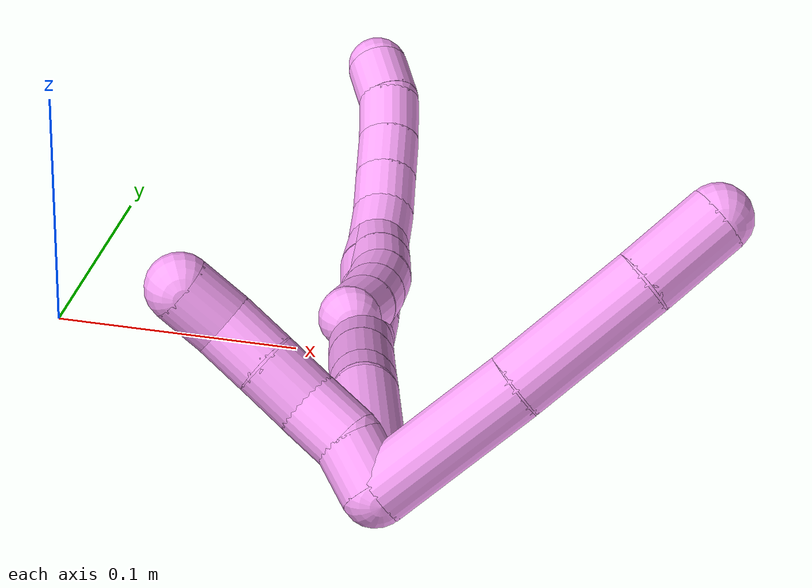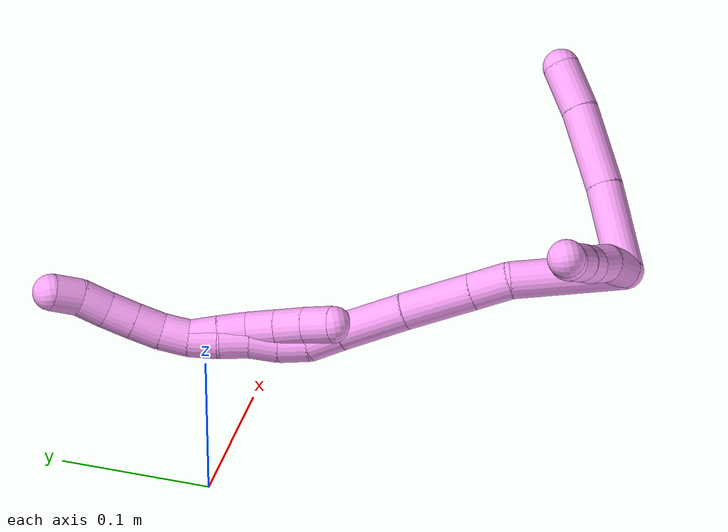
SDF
<sdf version="1.7">
 <world name="default">
  <model name="4">
   <static>0</static>
   <link name="4">
    <collision name="collision-cylinder-e_1_2_8">
     <pose>0.021326 0.02083 -0.000878 -1.61292 0.796719 -0.827293</pose>
     <geometry><cylinder><radius>0.0125</radius><length>0.059648</length></cylinder></geometry>
     <surface>
      <friction><ode><mu>1.16</mu><mu2>1.16</mu2><slip1>0</slip1><slip2>0</slip2></ode></friction>
      <contact><ode><kp>1e+06</kp><kd>1</kd><max_vel>0</max_vel><min_depth>0.001</min_depth></ode></contact>
     </surface>
    </collision>
    <visual name="visual-cylinder-e_1_2_8">
     <pose>0.021326 0.02083 -0.000878 -1.61292 0.796719 -0.827293</pose>
     <geometry><cylinder><radius>0.0125</radius><length>0.059648</length></cylinder></geometry>
     <material><ambient>1 0.65098 0.996078 1</ambient></material>
    </visual>
    <collision name="collision-cylinder-e_2_8_9">
     <pose>0.062749 0.061359 -0.004457 -1.70706 0.790748 -0.89257</pose>
     <geometry><cylinder><radius>0.0125</radius><length>0.05654</length></cylinder></geometry>
     <surface>
      <friction><ode><mu>1.16</mu><mu2>1.16</mu2><slip1>0</slip1><slip2>0</slip2></ode></friction>
      <contact><ode><kp>1e+06</kp><kd>1</kd><max_vel>0</max_vel><min_depth>0.001</min_depth></ode></contact>
     </surface>
    </collision>
    <visual name="visual-cylinder-e_2_8_9">
     <pose>0.062749 0.061359 -0.004457 -1.70706 0.790748 -0.89257</pose>
     <geometry><cylinder><radius>0.0125</radius><length>0.05654</length></cylinder></geometry>
     <material><ambient>1 0.65098 0.996078 1</ambient></material>
    </visual>
    <collision name="collision-cylinder-e_3_9_6">
     <pose>0.094886 0.092508 -0.010275 -1.8366 0.792619 -1.002</pose>
     <geometry><cylinder><radius>0.0125</radius><length>0.033812</length></cylinder></geometry>
     <surface>
      <friction><ode><mu>1.16</mu><mu2>1.16</mu2><slip1>0</slip1><slip2>0</slip2></ode></friction>
      <contact><ode><kp>1e+06</kp><kd>1</kd><max_vel>0</max_vel><min_depth>0.001</min_depth></ode></contact>
     </surface>
    </collision>
    <visual name="visual-cylinder-e_3_9_6">
     <pose>0.094886 0.092508 -0.010275 -1.8366 0.792619 -1.002</pose>
     <geometry><cylinder><radius>0.0125</radius><length>0.033812</length></cylinder></geometry>
     <material><ambient>1 0.65098 0.996078 1</ambient></material>
    </visual>
    <collision name="collision-cylinder-e_1_2_10">
     <pose>-0.004619 0.006398 -0.006142 -2.33578 -0.480185 1.04273</pose>
     <geometry><cylinder><radius>0.0125</radius><length>0.02</length></cylinder></geometry>
     <surface>
      <friction><ode><mu>1.16</mu><mu2>1.16</mu2><slip1>0</slip1><slip2>0</slip2></ode></friction>
      <contact><ode><kp>1e+06</kp><kd>1</kd><max_vel>0</max_vel><min_depth>0.001</min_depth></ode></contact>
     </surface>
    </collision>
    <visual name="visual-cylinder-e_1_2_10">
     <pose>-0.004619 0.006398 -0.006142 -2.33578 -0.480185 1.04273</pose>
     <geometry><cylinder><radius>0.0125</radius><length>0.02</length></cylinder></geometry>
     <material><ambient>1 0.65098 0.996078 1</ambient></material>
    </visual>
    <collision name="collision-cylinder-e_2_10_11">
     <pose>-0.016079 0.016745 -0.018418 -2.56961 -0.753262 1.86298</pose>
     <geometry><cylinder><radius>0.0125</radius><length>0.02</length></cylinder></geometry>
     <surface>
      <friction><ode><mu>1.16</mu><mu2>1.16</mu2><slip1>0</slip1><slip2>0</slip2></ode></friction>
      <contact><ode><kp>1e+06</kp><kd>1</kd><max_vel>0</max_vel><min_depth>0.001</min_depth></ode></contact>
     </surface>
    </collision>
    <visual name="visual-cylinder-e_2_10_11">
     <pose>-0.016079 0.016745 -0.018418 -2.56961 -0.753262 1.86298</pose>
     <geometry><cylinder><radius>0.0125</radius><length>0.02</length></cylinder></geometry>
     <material><ambient>1 0.65098 0.996078 1</ambient></material>
    </visual>
    <collision name="collision-cylinder-e_3_11_12">
     <pose>-0.030464 0.02601 -0.028398 -2.19718 -0.854901 1.45666</pose>
     <geometry><cylinder><radius>0.0125</radius><length>0.02</length></cylinder></geometry>
     <surface>
      <friction><ode><mu>1.16</mu><mu2>1.16</mu2><slip1>0</slip1><slip2>0</slip2></ode></friction>
      <contact><ode><kp>1e+06</kp><kd>1</kd><max_vel>0</max_vel><min_depth>0.001</min_depth></ode></contact>
     </surface>
    </collision>
    <visual name="visual-cylinder-e_3_11_12">
     <pose>-0.030464 0.02601 -0.028398 -2.19718 -0.854901 1.45666</pose>
     <geometry><cylinder><radius>0.0125</radius><length>0.02</length></cylinder></geometry>
     <material><ambient>1 0.65098 0.996078 1</ambient></material>
    </visual>
    <collision name="collision-cylinder-e_4_12_13">
     <pose>-0.045416 0.03622 -0.036851 -2.32596 -0.834072 1.5959</pose>
     <geometry><cylinder><radius>0.0125</radius><length>0.02</length></cylinder></geometry>
     <surface>
      <friction><ode><mu>1.16</mu><mu2>1.16</mu2><slip1>0</slip1><slip2>0</slip2></ode></friction>
      <contact><ode><kp>1e+06</kp><kd>1</kd><max_vel>0</max_vel><min_depth>0.001</min_depth></ode></contact>
     </surface>
    </collision>
    <visual name="visual-cylinder-e_4_12_13">
     <pose>-0.045416 0.03622 -0.036851 -2.32596 -0.834072 1.5959</pose>
     <geometry><cylinder><radius>0.0125</radius><length>0.02</length></cylinder></geometry>
     <material><ambient>1 0.65098 0.996078 1</ambient></material>
    </visual>
    <collision name="collision-cylinder-e_5_13_5">
     <pose>-0.061015 0.046686 -0.042809 -1.80888 -0.959959 1.16958</pose>
     <geometry><cylinder><radius>0.0125</radius><length>0.02</length></cylinder></geometry>
     <surface>
      <friction><ode><mu>1.16</mu><mu2>1.16</mu2><slip1>0</slip1><slip2>0</slip2></ode></friction>
      <contact><ode><kp>1e+06</kp><kd>1</kd><max_vel>0</max_vel><min_depth>0.001</min_depth></ode></contact>
     </surface>
    </collision>
    <visual name="visual-cylinder-e_5_13_5">
     <pose>-0.061015 0.046686 -0.042809 -1.80888 -0.959959 1.16958</pose>
     <geometry><cylinder><radius>0.0125</radius><length>0.02</length></cylinder></geometry>
     <material><ambient>1 0.65098 0.996078 1</ambient></material>
    </visual>
    <collision name="collision-cylinder-e_1_2_14">
     <pose>0.003912 0.001909 -0.037693 -3.09098 0.103288 -2.2309</pose>
     <geometry><cylinder><radius>0.0125</radius><length>0.075887</length></cylinder></geometry>
     <surface>
      <friction><ode><mu>1.16</mu><mu2>1.16</mu2><slip1>0</slip1><slip2>0</slip2></ode></friction>
      <contact><ode><kp>1e+06</kp><kd>1</kd><max_vel>0</max_vel><min_depth>0.001</min_depth></ode></contact>
     </surface>
    </collision>
    <visual name="visual-cylinder-e_1_2_14">
     <pose>0.003912 0.001909 -0.037693 -3.09098 0.103288 -2.2309</pose>
     <geometry><cylinder><radius>0.0125</radius><length>0.075887</length></cylinder></geometry>
     <material><ambient>1 0.65098 0.996078 1</ambient></material>
    </visual>
    <collision name="collision-cylinder-e_2_14_15">
     <pose>0.010019 0.001027 -0.088143 2.92613 0.166499 1.31429</pose>
     <geometry><cylinder><radius>0.0125</radius><length>0.026484</length></cylinder></geometry>
     <surface>
      <friction><ode><mu>1.16</mu><mu2>1.16</mu2><slip1>0</slip1><slip2>0</slip2></ode></friction>
      <contact><ode><kp>1e+06</kp><kd>1</kd><max_vel>0</max_vel><min_depth>0.001</min_depth></ode></contact>
     </surface>
    </collision>
    <visual name="visual-cylinder-e_2_14_15">
     <pose>0.010019 0.001027 -0.088143 2.92613 0.166499 1.31429</pose>
     <geometry><cylinder><radius>0.0125</radius><length>0.026484</length></cylinder></geometry>
     <material><ambient>1 0.65098 0.996078 1</ambient></material>
    </visual>
    <collision name="collision-cylinder-e_3_15_16">
     <pose>0.016262 -0.00672 -0.123797 2.92848 0.171133 1.35185</pose>
     <geometry><cylinder><radius>0.0125</radius><length>0.047548</length></cylinder></geometry>
     <surface>
      <friction><ode><mu>1.16</mu><mu2>1.16</mu2><slip1>0</slip1><slip2>0</slip2></ode></friction>
      <contact><ode><kp>1e+06</kp><kd>1</kd><max_vel>0</max_vel><min_depth>0.001</min_depth></ode></contact>
     </surface>
    </collision>
    <visual name="visual-cylinder-e_3_15_16">
     <pose>0.016262 -0.00672 -0.123797 2.92848 0.171133 1.35185</pose>
     <geometry><cylinder><radius>0.0125</radius><length>0.047548</length></cylinder></geometry>
     <material><ambient>1 0.65098 0.996078 1</ambient></material>
    </visual>
    <collision name="collision-cylinder-e_4_16_17">
     <pose>0.024514 -0.017264 -0.16863 2.89214 0.183566 1.2665</pose>
     <geometry><cylinder><radius>0.0125</radius><length>0.046049</length></cylinder></geometry>
     <surface>
      <friction><ode><mu>1.16</mu><mu2>1.16</mu2><slip1>0</slip1><slip2>0</slip2></ode></friction>
      <contact><ode><kp>1e+06</kp><kd>1</kd><max_vel>0</max_vel><min_depth>0.001</min_depth></ode></contact>
     </surface>
    </collision>
    <visual name="visual-cylinder-e_4_16_17">
     <pose>0.024514 -0.017264 -0.16863 2.89214 0.183566 1.2665</pose>
     <geometry><cylinder><radius>0.0125</radius><length>0.046049</length></cylinder></geometry>
     <material><ambient>1 0.65098 0.996078 1</ambient></material>
    </visual>
    <collision name="collision-cylinder-e_5_17_18">
     <pose>0.031296 -0.026205 -0.201356 2.84032 0.224488 1.27752</pose>
     <geometry><cylinder><radius>0.0125</radius><length>0.023175</length></cylinder></geometry>
     <surface>
      <friction><ode><mu>1.16</mu><mu2>1.16</mu2><slip1>0</slip1><slip2>0</slip2></ode></friction>
      <contact><ode><kp>1e+06</kp><kd>1</kd><max_vel>0</max_vel><min_depth>0.001</min_depth></ode></contact>
     </surface>
    </collision>
    <visual name="visual-cylinder-e_5_17_18">
     <pose>0.031296 -0.026205 -0.201356 2.84032 0.224488 1.27752</pose>
     <geometry><cylinder><radius>0.0125</radius><length>0.023175</length></cylinder></geometry>
     <material><ambient>1 0.65098 0.996078 1</ambient></material>
    </visual>
    <collision name="collision-cylinder-e_6_18_19">
     <pose>0.036336 -0.029286 -0.222036 -3.11422 0.243722 -2.919</pose>
     <geometry><cylinder><radius>0.0125</radius><length>0.020394</length></cylinder></geometry>
     <surface>
      <friction><ode><mu>1.16</mu><mu2>1.16</mu2><slip1>0</slip1><slip2>0</slip2></ode></friction>
      <contact><ode><kp>1e+06</kp><kd>1</kd><max_vel>0</max_vel><min_depth>0.001</min_depth></ode></contact>
     </surface>
    </collision>
    <visual name="visual-cylinder-e_6_18_19">
     <pose>0.036336 -0.029286 -0.222036 -3.11422 0.243722 -2.919</pose>
     <geometry><cylinder><radius>0.0125</radius><length>0.020394</length></cylinder></geometry>
     <material><ambient>1 0.65098 0.996078 1</ambient></material>
    </visual>
    <collision name="collision-cylinder-e_7_19_20">
     <pose>0.040852 -0.026422 -0.241437 -2.87531 0.205594 -1.31266</pose>
     <geometry><cylinder><radius>0.0125</radius><length>0.020137</length></cylinder></geometry>
     <surface>
      <friction><ode><mu>1.16</mu><mu2>1.16</mu2><slip1>0</slip1><slip2>0</slip2></ode></friction>
      <contact><ode><kp>1e+06</kp><kd>1</kd><max_vel>0</max_vel><min_depth>0.001</min_depth></ode></contact>
     </surface>
    </collision>
    <visual name="visual-cylinder-e_7_19_20">
     <pose>0.040852 -0.026422 -0.241437 -2.87531 0.205594 -1.31266</pose>
     <geometry><cylinder><radius>0.0125</radius><length>0.020137</length></cylinder></geometry>
     <material><ambient>1 0.65098 0.996078 1</ambient></material>
    </visual>
    <collision name="collision-cylinder-e_8_20_21">
     <pose>0.044299 -0.022848 -0.260832 -3.04279 0.1391 -1.90714</pose>
     <geometry><cylinder><radius>0.0125</radius><length>0.020063</length></cylinder></geometry>
     <surface>
      <friction><ode><mu>1.16</mu><mu2>1.16</mu2><slip1>0</slip1><slip2>0</slip2></ode></friction>
      <contact><ode><kp>1e+06</kp><kd>1</kd><max_vel>0</max_vel><min_depth>0.001</min_depth></ode></contact>
     </surface>
    </collision>
    <visual name="visual-cylinder-e_8_20_21">
     <pose>0.044299 -0.022848 -0.260832 -3.04279 0.1391 -1.90714</pose>
     <geometry><cylinder><radius>0.0125</radius><length>0.020063</length></cylinder></geometry>
     <material><ambient>1 0.65098 0.996078 1</ambient></material>
    </visual>
    <collision name="collision-cylinder-e_9_21_1">
     <pose>0.048541 -0.020663 -0.280365 -3.01737 0.285264 -2.32425</pose>
     <geometry><cylinder><radius>0.0125</radius><length>0.020263</length></cylinder></geometry>
     <surface>
      <friction><ode><mu>1.16</mu><mu2>1.16</mu2><slip1>0</slip1><slip2>0</slip2></ode></friction>
      <contact><ode><kp>1e+06</kp><kd>1</kd><max_vel>0</max_vel><min_depth>0.001</min_depth></ode></contact>
     </surface>
    </collision>
    <visual name="visual-cylinder-e_9_21_1">
     <pose>0.048541 -0.020663 -0.280365 -3.01737 0.285264 -2.32425</pose>
     <geometry><cylinder><radius>0.0125</radius><length>0.020263</length></cylinder></geometry>
     <material><ambient>1 0.65098 0.996078 1</ambient></material>
    </visual>
    <collision name="collision-cylinder-e_1_1_22">
     <pose>0.053459 -0.015995 -0.299162 -2.7797 0.208217 -1.03785</pose>
     <geometry><cylinder><radius>0.0125</radius><length>0.02</length></cylinder></geometry>
     <surface>
      <friction><ode><mu>1.16</mu><mu2>1.16</mu2><slip1>0</slip1><slip2>0</slip2></ode></friction>
      <contact><ode><kp>1e+06</kp><kd>1</kd><max_vel>0</max_vel><min_depth>0.001</min_depth></ode></contact>
     </surface>
    </collision>
    <visual name="visual-cylinder-e_1_1_22">
     <pose>0.053459 -0.015995 -0.299162 -2.7797 0.208217 -1.03785</pose>
     <geometry><cylinder><radius>0.0125</radius><length>0.02</length></cylinder></geometry>
     <material><ambient>1 0.65098 0.996078 1</ambient></material>
    </visual>
    <collision name="collision-cylinder-e_2_22_23">
     <pose>0.056766 -0.007417 -0.316816 -2.60016 0.124352 -0.441339</pose>
     <geometry><cylinder><radius>0.0125</radius><length>0.02</length></cylinder></geometry>
     <surface>
      <friction><ode><mu>1.16</mu><mu2>1.16</mu2><slip1>0</slip1><slip2>0</slip2></ode></friction>
      <contact><ode><kp>1e+06</kp><kd>1</kd><max_vel>0</max_vel><min_depth>0.001</min_depth></ode></contact>
     </surface>
    </collision>
    <visual name="visual-cylinder-e_2_22_23">
     <pose>0.056766 -0.007417 -0.316816 -2.60016 0.124352 -0.441339</pose>
     <geometry><cylinder><radius>0.0125</radius><length>0.02</length></cylinder></geometry>
     <material><ambient>1 0.65098 0.996078 1</ambient></material>
    </visual>
    <collision name="collision-cylinder-e_3_23_24">
     <pose>0.059269 0.003067 -0.33366 -2.56949 0.126562 -0.4244</pose>
     <geometry><cylinder><radius>0.0125</radius><length>0.02</length></cylinder></geometry>
     <surface>
      <friction><ode><mu>1.16</mu><mu2>1.16</mu2><slip1>0</slip1><slip2>0</slip2></ode></friction>
      <contact><ode><kp>1e+06</kp><kd>1</kd><max_vel>0</max_vel><min_depth>0.001</min_depth></ode></contact>
     </surface>
    </collision>
    <visual name="visual-cylinder-e_3_23_24">
     <pose>0.059269 0.003067 -0.33366 -2.56949 0.126562 -0.4244</pose>
     <geometry><cylinder><radius>0.0125</radius><length>0.02</length></cylinder></geometry>
     <material><ambient>1 0.65098 0.996078 1</ambient></material>
    </visual>
    <collision name="collision-cylinder-e_4_24_25">
     <pose>0.061053 0.014452 -0.349973 -2.49531 0.052244 -0.15573</pose>
     <geometry><cylinder><radius>0.0125</radius><length>0.02</length></cylinder></geometry>
     <surface>
      <friction><ode><mu>1.16</mu><mu2>1.16</mu2><slip1>0</slip1><slip2>0</slip2></ode></friction>
      <contact><ode><kp>1e+06</kp><kd>1</kd><max_vel>0</max_vel><min_depth>0.001</min_depth></ode></contact>
     </surface>
    </collision>
    <visual name="visual-cylinder-e_4_24_25">
     <pose>0.061053 0.014452 -0.349973 -2.49531 0.052244 -0.15573</pose>
     <geometry><cylinder><radius>0.0125</radius><length>0.02</length></cylinder></geometry>
     <material><ambient>1 0.65098 0.996078 1</ambient></material>
    </visual>
    <collision name="collision-cylinder-e_5_25_4">
     <pose>0.059924 0.024892 -0.366759 -2.67626 -0.16596 0.675116</pose>
     <geometry><cylinder><radius>0.0125</radius><length>0.02</length></cylinder></geometry>
     <surface>
      <friction><ode><mu>1.16</mu><mu2>1.16</mu2><slip1>0</slip1><slip2>0</slip2></ode></friction>
      <contact><ode><kp>1e+06</kp><kd>1</kd><max_vel>0</max_vel><min_depth>0.001</min_depth></ode></contact>
     </surface>
    </collision>
    <visual name="visual-cylinder-e_5_25_4">
     <pose>0.059924 0.024892 -0.366759 -2.67626 -0.16596 0.675116</pose>
     <geometry><cylinder><radius>0.0125</radius><length>0.02</length></cylinder></geometry>
     <material><ambient>1 0.65098 0.996078 1</ambient></material>
    </visual>
    <collision name="collision-cylinder-e_1_1_26">
     <pose>0.050011 -0.019049 -0.280116 -0.041437 -0.138535 0.002875</pose>
     <geometry><cylinder><radius>0.0125</radius><length>0.02</length></cylinder></geometry>
     <surface>
      <friction><ode><mu>1.16</mu><mu2>1.16</mu2><slip1>0</slip1><slip2>0</slip2></ode></friction>
      <contact><ode><kp>1e+06</kp><kd>1</kd><max_vel>0</max_vel><min_depth>0.001</min_depth></ode></contact>
     </surface>
    </collision>
    <visual name="visual-cylinder-e_1_1_26">
     <pose>0.050011 -0.019049 -0.280116 -0.041437 -0.138535 0.002875</pose>
     <geometry><cylinder><radius>0.0125</radius><length>0.02</length></cylinder></geometry>
     <material><ambient>1 0.65098 0.996078 1</ambient></material>
    </visual>
    <collision name="collision-cylinder-e_2_26_27">
     <pose>0.047104 -0.018461 -0.260339 -0.017983 -0.153225 0.00138</pose>
     <geometry><cylinder><radius>0.0125</radius><length>0.02</length></cylinder></geometry>
     <surface>
      <friction><ode><mu>1.16</mu><mu2>1.16</mu2><slip1>0</slip1><slip2>0</slip2></ode></friction>
      <contact><ode><kp>1e+06</kp><kd>1</kd><max_vel>0</max_vel><min_depth>0.001</min_depth></ode></contact>
     </surface>
    </collision>
    <visual name="visual-cylinder-e_2_26_27">
     <pose>0.047104 -0.018461 -0.260339 -0.017983 -0.153225 0.00138</pose>
     <geometry><cylinder><radius>0.0125</radius><length>0.02</length></cylinder></geometry>
     <material><ambient>1 0.65098 0.996078 1</ambient></material>
    </visual>
    <collision name="collision-cylinder-e_3_27_28">
     <pose>0.042612 -0.017785 -0.240921 -0.052138 -0.301036 0.007909</pose>
     <geometry><cylinder><radius>0.0125</radius><length>0.02</length></cylinder></geometry>
     <surface>
      <friction><ode><mu>1.16</mu><mu2>1.16</mu2><slip1>0</slip1><slip2>0</slip2></ode></friction>
      <contact><ode><kp>1e+06</kp><kd>1</kd><max_vel>0</max_vel><min_depth>0.001</min_depth></ode></contact>
     </surface>
    </collision>
    <visual name="visual-cylinder-e_3_27_28">
     <pose>0.042612 -0.017785 -0.240921 -0.052138 -0.301036 0.007909</pose>
     <geometry><cylinder><radius>0.0125</radius><length>0.02</length></cylinder></geometry>
     <material><ambient>1 0.65098 0.996078 1</ambient></material>
    </visual>
    <collision name="collision-cylinder-e_4_28_29">
     <pose>0.036192 -0.016493 -0.222033 -0.084813 -0.352752 0.015125</pose>
     <geometry><cylinder><radius>0.0125</radius><length>0.02</length></cylinder></geometry>
     <surface>
      <friction><ode><mu>1.16</mu><mu2>1.16</mu2><slip1>0</slip1><slip2>0</slip2></ode></friction>
      <contact><ode><kp>1e+06</kp><kd>1</kd><max_vel>0</max_vel><min_depth>0.001</min_depth></ode></contact>
     </surface>
    </collision>
    <visual name="visual-cylinder-e_4_28_29">
     <pose>0.036192 -0.016493 -0.222033 -0.084813 -0.352752 0.015125</pose>
     <geometry><cylinder><radius>0.0125</radius><length>0.02</length></cylinder></geometry>
     <material><ambient>1 0.65098 0.996078 1</ambient></material>
    </visual>
    <collision name="collision-cylinder-e_5_29_3">
     <pose>0.028354 -0.014807 -0.203739 -0.09924 -0.453812 0.022931</pose>
     <geometry><cylinder><radius>0.0125</radius><length>0.02</length></cylinder></geometry>
     <surface>
      <friction><ode><mu>1.16</mu><mu2>1.16</mu2><slip1>0</slip1><slip2>0</slip2></ode></friction>
      <contact><ode><kp>1e+06</kp><kd>1</kd><max_vel>0</max_vel><min_depth>0.001</min_depth></ode></contact>
     </surface>
    </collision>
    <visual name="visual-cylinder-e_5_29_3">
     <pose>0.028354 -0.014807 -0.203739 -0.09924 -0.453812 0.022931</pose>
     <geometry><cylinder><radius>0.0125</radius><length>0.02</length></cylinder></geometry>
     <material><ambient>1 0.65098 0.996078 1</ambient></material>
    </visual>
    <collision name="collision-sphere-3">
     <pose>0.02397 -0.013917 -0.194795 0 -0 0</pose>
     <geometry><sphere><radius>0.0125</radius></sphere></geometry>
     <surface>
      <friction><ode><mu>1.16</mu><mu2>1.16</mu2><slip1>0</slip1><slip2>0</slip2></ode></friction>
      <contact><ode><kp>1e+06</kp><kd>1</kd><max_vel>0</max_vel><min_depth>0.001</min_depth></ode></contact>
     </surface>
    </collision>
    <visual name="visual-sphere-3">
     <pose>0.02397 -0.013917 -0.194795 0 -0 0</pose>
     <geometry><sphere><radius>0.0125</radius></sphere></geometry>
     <material><ambient>1 0.65098 0.996078 1</ambient></material>
    </visual>
    <collision name="collision-sphere-29">
     <pose>0.032738 -0.015698 -0.212682 0 -0 0</pose>
     <geometry><sphere><radius>0.0125</radius></sphere></geometry>
     <surface>
      <friction><ode><mu>1.16</mu><mu2>1.16</mu2><slip1>0</slip1><slip2>0</slip2></ode></friction>
      <contact><ode><kp>1e+06</kp><kd>1</kd><max_vel>0</max_vel><min_depth>0.001</min_depth></ode></contact>
     </surface>
    </collision>
    <visual name="visual-sphere-29">
     <pose>0.032738 -0.015698 -0.212682 0 -0 0</pose>
     <geometry><sphere><radius>0.0125</radius></sphere></geometry>
     <material><ambient>1 0.65098 0.996078 1</ambient></material>
    </visual>
    <collision name="collision-sphere-28">
     <pose>0.039647 -0.017287 -0.231383 0 -0 0</pose>
     <geometry><sphere><radius>0.0125</radius></sphere></geometry>
     <surface>
      <friction><ode><mu>1.16</mu><mu2>1.16</mu2><slip1>0</slip1><slip2>0</slip2></ode></friction>
      <contact><ode><kp>1e+06</kp><kd>1</kd><max_vel>0</max_vel><min_depth>0.001</min_depth></ode></contact>
     </surface>
    </collision>
    <visual name="visual-sphere-28">
     <pose>0.039647 -0.017287 -0.231383 0 -0 0</pose>
     <geometry><sphere><radius>0.0125</radius></sphere></geometry>
     <material><ambient>1 0.65098 0.996078 1</ambient></material>
    </visual>
    <collision name="collision-sphere-27">
     <pose>0.045577 -0.018283 -0.250458 0 -0 0</pose>
     <geometry><sphere><radius>0.0125</radius></sphere></geometry>
     <surface>
      <friction><ode><mu>1.16</mu><mu2>1.16</mu2><slip1>0</slip1><slip2>0</slip2></ode></friction>
      <contact><ode><kp>1e+06</kp><kd>1</kd><max_vel>0</max_vel><min_depth>0.001</min_depth></ode></contact>
     </surface>
    </collision>
    <visual name="visual-sphere-27">
     <pose>0.045577 -0.018283 -0.250458 0 -0 0</pose>
     <geometry><sphere><radius>0.0125</radius></sphere></geometry>
     <material><ambient>1 0.65098 0.996078 1</ambient></material>
    </visual>
    <collision name="collision-sphere-26">
     <pose>0.04863 -0.018638 -0.27022 0 -0 0</pose>
     <geometry><sphere><radius>0.0125</radius></sphere></geometry>
     <surface>
      <friction><ode><mu>1.16</mu><mu2>1.16</mu2><slip1>0</slip1><slip2>0</slip2></ode></friction>
      <contact><ode><kp>1e+06</kp><kd>1</kd><max_vel>0</max_vel><min_depth>0.001</min_depth></ode></contact>
     </surface>
    </collision>
    <visual name="visual-sphere-26">
     <pose>0.04863 -0.018638 -0.27022 0 -0 0</pose>
     <geometry><sphere><radius>0.0125</radius></sphere></geometry>
     <material><ambient>1 0.65098 0.996078 1</ambient></material>
    </visual>
    <collision name="collision-sphere-4">
     <pose>0.058272 0.029317 -0.375573 0 -0 0</pose>
     <geometry><sphere><radius>0.0125</radius></sphere></geometry>
     <surface>
      <friction><ode><mu>1.16</mu><mu2>1.16</mu2><slip1>0</slip1><slip2>0</slip2></ode></friction>
      <contact><ode><kp>1e+06</kp><kd>1</kd><max_vel>0</max_vel><min_depth>0.001</min_depth></ode></contact>
     </surface>
    </collision>
    <visual name="visual-sphere-4">
     <pose>0.058272 0.029317 -0.375573 0 -0 0</pose>
     <geometry><sphere><radius>0.0125</radius></sphere></geometry>
     <material><ambient>1 0.65098 0.996078 1</ambient></material>
    </visual>
    <collision name="collision-sphere-25">
     <pose>0.061576 0.020466 -0.357945 0 -0 0</pose>
     <geometry><sphere><radius>0.0125</radius></sphere></geometry>
     <surface>
      <friction><ode><mu>1.16</mu><mu2>1.16</mu2><slip1>0</slip1><slip2>0</slip2></ode></friction>
      <contact><ode><kp>1e+06</kp><kd>1</kd><max_vel>0</max_vel><min_depth>0.001</min_depth></ode></contact>
     </surface>
    </collision>
    <visual name="visual-sphere-25">
     <pose>0.061576 0.020466 -0.357945 0 -0 0</pose>
     <geometry><sphere><radius>0.0125</radius></sphere></geometry>
     <material><ambient>1 0.65098 0.996078 1</ambient></material>
    </visual>
    <collision name="collision-sphere-24">
     <pose>0.060531 0.008438 -0.342 0 -0 0</pose>
     <geometry><sphere><radius>0.0125</radius></sphere></geometry>
     <surface>
      <friction><ode><mu>1.16</mu><mu2>1.16</mu2><slip1>0</slip1><slip2>0</slip2></ode></friction>
      <contact><ode><kp>1e+06</kp><kd>1</kd><max_vel>0</max_vel><min_depth>0.001</min_depth></ode></contact>
     </surface>
    </collision>
    <visual name="visual-sphere-24">
     <pose>0.060531 0.008438 -0.342 0 -0 0</pose>
     <geometry><sphere><radius>0.0125</radius></sphere></geometry>
     <material><ambient>1 0.65098 0.996078 1</ambient></material>
    </visual>
    <collision name="collision-sphere-23">
     <pose>0.058007 -0.002303 -0.325319 0 -0 0</pose>
     <geometry><sphere><radius>0.0125</radius></sphere></geometry>
     <surface>
      <friction><ode><mu>1.16</mu><mu2>1.16</mu2><slip1>0</slip1><slip2>0</slip2></ode></friction>
      <contact><ode><kp>1e+06</kp><kd>1</kd><max_vel>0</max_vel><min_depth>0.001</min_depth></ode></contact>
     </surface>
    </collision>
    <visual name="visual-sphere-23">
     <pose>0.058007 -0.002303 -0.325319 0 -0 0</pose>
     <geometry><sphere><radius>0.0125</radius></sphere></geometry>
     <material><ambient>1 0.65098 0.996078 1</ambient></material>
    </visual>
    <collision name="collision-sphere-22">
     <pose>0.055526 -0.012531 -0.308312 0 -0 0</pose>
     <geometry><sphere><radius>0.0125</radius></sphere></geometry>
     <surface>
      <friction><ode><mu>1.16</mu><mu2>1.16</mu2><slip1>0</slip1><slip2>0</slip2></ode></friction>
      <contact><ode><kp>1e+06</kp><kd>1</kd><max_vel>0</max_vel><min_depth>0.001</min_depth></ode></contact>
     </surface>
    </collision>
    <visual name="visual-sphere-22">
     <pose>0.055526 -0.012531 -0.308312 0 -0 0</pose>
     <geometry><sphere><radius>0.0125</radius></sphere></geometry>
     <material><ambient>1 0.65098 0.996078 1</ambient></material>
    </visual>
    <collision name="collision-sphere-1">
     <pose>0.051392 -0.019459 -0.290012 0 -0 0</pose>
     <geometry><sphere><radius>0.0125</radius></sphere></geometry>
     <surface>
      <friction><ode><mu>1.16</mu><mu2>1.16</mu2><slip1>0</slip1><slip2>0</slip2></ode></friction>
      <contact><ode><kp>1e+06</kp><kd>1</kd><max_vel>0</max_vel><min_depth>0.001</min_depth></ode></contact>
     </surface>
    </collision>
    <visual name="visual-sphere-1">
     <pose>0.051392 -0.019459 -0.290012 0 -0 0</pose>
     <geometry><sphere><radius>0.0125</radius></sphere></geometry>
     <material><ambient>1 0.65098 0.996078 1</ambient></material>
    </visual>
    <collision name="collision-sphere-21">
     <pose>0.04569 -0.021868 -0.270717 0 -0 0</pose>
     <geometry><sphere><radius>0.0125</radius></sphere></geometry>
     <surface>
      <friction><ode><mu>1.16</mu><mu2>1.16</mu2><slip1>0</slip1><slip2>0</slip2></ode></friction>
      <contact><ode><kp>1e+06</kp><kd>1</kd><max_vel>0</max_vel><min_depth>0.001</min_depth></ode></contact>
     </surface>
    </collision>
    <visual name="visual-sphere-21">
     <pose>0.04569 -0.021868 -0.270717 0 -0 0</pose>
     <geometry><sphere><radius>0.0125</radius></sphere></geometry>
     <material><ambient>1 0.65098 0.996078 1</ambient></material>
    </visual>
    <collision name="collision-sphere-11">
     <pose>-0.022919 0.020693 -0.024551 0 -0 0</pose>
     <geometry><sphere><radius>0.0125</radius></sphere></geometry>
     <surface>
      <friction><ode><mu>1.16</mu><mu2>1.16</mu2><slip1>0</slip1><slip2>0</slip2></ode></friction>
      <contact><ode><kp>1e+06</kp><kd>1</kd><max_vel>0</max_vel><min_depth>0.001</min_depth></ode></contact>
     </surface>
    </collision>
    <visual name="visual-sphere-11">
     <pose>-0.022919 0.020693 -0.024551 0 -0 0</pose>
     <geometry><sphere><radius>0.0125</radius></sphere></geometry>
     <material><ambient>1 0.65098 0.996078 1</ambient></material>
    </visual>
    <collision name="collision-sphere-10">
     <pose>-0.009239 0.012796 -0.012284 0 -0 0</pose>
     <geometry><sphere><radius>0.0125</radius></sphere></geometry>
     <surface>
      <friction><ode><mu>1.16</mu><mu2>1.16</mu2><slip1>0</slip1><slip2>0</slip2></ode></friction>
      <contact><ode><kp>1e+06</kp><kd>1</kd><max_vel>0</max_vel><min_depth>0.001</min_depth></ode></contact>
     </surface>
    </collision>
    <visual name="visual-sphere-10">
     <pose>-0.009239 0.012796 -0.012284 0 -0 0</pose>
     <geometry><sphere><radius>0.0125</radius></sphere></geometry>
     <material><ambient>1 0.65098 0.996078 1</ambient></material>
    </visual>
    <collision name="collision-sphere-6">
     <pose>0.106926 0.103959 -0.013393 0 -0 0</pose>
     <geometry><sphere><radius>0.0125</radius></sphere></geometry>
     <surface>
      <friction><ode><mu>1.16</mu><mu2>1.16</mu2><slip1>0</slip1><slip2>0</slip2></ode></friction>
      <contact><ode><kp>1e+06</kp><kd>1</kd><max_vel>0</max_vel><min_depth>0.001</min_depth></ode></contact>
     </surface>
    </collision>
    <visual name="visual-sphere-6">
     <pose>0.106926 0.103959 -0.013393 0 -0 0</pose>
     <geometry><sphere><radius>0.0125</radius></sphere></geometry>
     <material><ambient>1 0.65098 0.996078 1</ambient></material>
    </visual>
    <collision name="collision-sphere-9">
     <pose>0.082845 0.081057 -0.007158 0 -0 0</pose>
     <geometry><sphere><radius>0.0125</radius></sphere></geometry>
     <surface>
      <friction><ode><mu>1.16</mu><mu2>1.16</mu2><slip1>0</slip1><slip2>0</slip2></ode></friction>
      <contact><ode><kp>1e+06</kp><kd>1</kd><max_vel>0</max_vel><min_depth>0.001</min_depth></ode></contact>
     </surface>
    </collision>
    <visual name="visual-sphere-9">
     <pose>0.082845 0.081057 -0.007158 0 -0 0</pose>
     <geometry><sphere><radius>0.0125</radius></sphere></geometry>
     <material><ambient>1 0.65098 0.996078 1</ambient></material>
    </visual>
    <collision name="collision-sphere-2">
     <geometry><sphere><radius>0.0125</radius></sphere></geometry>
     <surface>
      <friction><ode><mu>1.16</mu><mu2>1.16</mu2><slip1>0</slip1><slip2>0</slip2></ode></friction>
      <contact><ode><kp>1e+06</kp><kd>1</kd><max_vel>0</max_vel><min_depth>0.001</min_depth></ode></contact>
     </surface>
    </collision>
    <visual name="visual-sphere-2">
     <geometry><sphere><radius>0.0125</radius></sphere></geometry>
     <material><ambient>1 0.65098 0.996078 1</ambient></material>
    </visual>
    <collision name="collision-sphere-19">
     <pose>0.038797 -0.029015 -0.231928 0 -0 0</pose>
     <geometry><sphere><radius>0.0125</radius></sphere></geometry>
     <surface>
      <friction><ode><mu>1.16</mu><mu2>1.16</mu2><slip1>0</slip1><slip2>0</slip2></ode></friction>
      <contact><ode><kp>1e+06</kp><kd>1</kd><max_vel>0</max_vel><min_depth>0.001</min_depth></ode></contact>
     </surface>
    </collision>
    <visual name="visual-sphere-19">
     <pose>0.038797 -0.029015 -0.231928 0 -0 0</pose>
     <geometry><sphere><radius>0.0125</radius></sphere></geometry>
     <material><ambient>1 0.65098 0.996078 1</ambient></material>
    </visual>
    <collision name="collision-sphere-8">
     <pose>0.042653 0.041661 -0.001756 0 -0 0</pose>
     <geometry><sphere><radius>0.0125</radius></sphere></geometry>
     <surface>
      <friction><ode><mu>1.16</mu><mu2>1.16</mu2><slip1>0</slip1><slip2>0</slip2></ode></friction>
      <contact><ode><kp>1e+06</kp><kd>1</kd><max_vel>0</max_vel><min_depth>0.001</min_depth></ode></contact>
     </surface>
    </collision>
    <visual name="visual-sphere-8">
     <pose>0.042653 0.041661 -0.001756 0 -0 0</pose>
     <geometry><sphere><radius>0.0125</radius></sphere></geometry>
     <material><ambient>1 0.65098 0.996078 1</ambient></material>
    </visual>
    <collision name="collision-sphere-12">
     <pose>-0.038009 0.031327 -0.032246 0 -0 0</pose>
     <geometry><sphere><radius>0.0125</radius></sphere></geometry>
     <surface>
      <friction><ode><mu>1.16</mu><mu2>1.16</mu2><slip1>0</slip1><slip2>0</slip2></ode></friction>
      <contact><ode><kp>1e+06</kp><kd>1</kd><max_vel>0</max_vel><min_depth>0.001</min_depth></ode></contact>
     </surface>
    </collision>
    <visual name="visual-sphere-12">
     <pose>-0.038009 0.031327 -0.032246 0 -0 0</pose>
     <geometry><sphere><radius>0.0125</radius></sphere></geometry>
     <material><ambient>1 0.65098 0.996078 1</ambient></material>
    </visual>
    <collision name="collision-sphere-13">
     <pose>-0.052823 0.041112 -0.041456 0 -0 0</pose>
     <geometry><sphere><radius>0.0125</radius></sphere></geometry>
     <surface>
      <friction><ode><mu>1.16</mu><mu2>1.16</mu2><slip1>0</slip1><slip2>0</slip2></ode></friction>
      <contact><ode><kp>1e+06</kp><kd>1</kd><max_vel>0</max_vel><min_depth>0.001</min_depth></ode></contact>
     </surface>
    </collision>
    <visual name="visual-sphere-13">
     <pose>-0.052823 0.041112 -0.041456 0 -0 0</pose>
     <geometry><sphere><radius>0.0125</radius></sphere></geometry>
     <material><ambient>1 0.65098 0.996078 1</ambient></material>
    </visual>
    <collision name="collision-sphere-5">
     <pose>-0.069206 0.052259 -0.044161 0 -0 0</pose>
     <geometry><sphere><radius>0.0125</radius></sphere></geometry>
     <surface>
      <friction><ode><mu>1.16</mu><mu2>1.16</mu2><slip1>0</slip1><slip2>0</slip2></ode></friction>
      <contact><ode><kp>1e+06</kp><kd>1</kd><max_vel>0</max_vel><min_depth>0.001</min_depth></ode></contact>
     </surface>
    </collision>
    <visual name="visual-sphere-5">
     <pose>-0.069206 0.052259 -0.044161 0 -0 0</pose>
     <geometry><sphere><radius>0.0125</radius></sphere></geometry>
     <material><ambient>1 0.65098 0.996078 1</ambient></material>
    </visual>
    <collision name="collision-sphere-14">
     <pose>0.007824 0.003819 -0.075386 0 -0 0</pose>
     <geometry><sphere><radius>0.0125</radius></sphere></geometry>
     <surface>
      <friction><ode><mu>1.16</mu><mu2>1.16</mu2><slip1>0</slip1><slip2>0</slip2></ode></friction>
      <contact><ode><kp>1e+06</kp><kd>1</kd><max_vel>0</max_vel><min_depth>0.001</min_depth></ode></contact>
     </surface>
    </collision>
    <visual name="visual-sphere-14">
     <pose>0.007824 0.003819 -0.075386 0 -0 0</pose>
     <geometry><sphere><radius>0.0125</radius></sphere></geometry>
     <material><ambient>1 0.65098 0.996078 1</ambient></material>
    </visual>
    <collision name="collision-sphere-15">
     <pose>0.012214 -0.001766 -0.1009 0 -0 0</pose>
     <geometry><sphere><radius>0.0125</radius></sphere></geometry>
     <surface>
      <friction><ode><mu>1.16</mu><mu2>1.16</mu2><slip1>0</slip1><slip2>0</slip2></ode></friction>
      <contact><ode><kp>1e+06</kp><kd>1</kd><max_vel>0</max_vel><min_depth>0.001</min_depth></ode></contact>
     </surface>
    </collision>
    <visual name="visual-sphere-15">
     <pose>0.012214 -0.001766 -0.1009 0 -0 0</pose>
     <geometry><sphere><radius>0.0125</radius></sphere></geometry>
     <material><ambient>1 0.65098 0.996078 1</ambient></material>
    </visual>
    <collision name="collision-sphere-16">
     <pose>0.020311 -0.011675 -0.146693 0 -0 0</pose>
     <geometry><sphere><radius>0.0125</radius></sphere></geometry>
     <surface>
      <friction><ode><mu>1.16</mu><mu2>1.16</mu2><slip1>0</slip1><slip2>0</slip2></ode></friction>
      <contact><ode><kp>1e+06</kp><kd>1</kd><max_vel>0</max_vel><min_depth>0.001</min_depth></ode></contact>
     </surface>
    </collision>
    <visual name="visual-sphere-16">
     <pose>0.020311 -0.011675 -0.146693 0 -0 0</pose>
     <geometry><sphere><radius>0.0125</radius></sphere></geometry>
     <material><ambient>1 0.65098 0.996078 1</ambient></material>
    </visual>
    <collision name="collision-sphere-17">
     <pose>0.028717 -0.022853 -0.190567 0 -0 0</pose>
     <geometry><sphere><radius>0.0125</radius></sphere></geometry>
     <surface>
      <friction><ode><mu>1.16</mu><mu2>1.16</mu2><slip1>0</slip1><slip2>0</slip2></ode></friction>
      <contact><ode><kp>1e+06</kp><kd>1</kd><max_vel>0</max_vel><min_depth>0.001</min_depth></ode></contact>
     </surface>
    </collision>
    <visual name="visual-sphere-17">
     <pose>0.028717 -0.022853 -0.190567 0 -0 0</pose>
     <geometry><sphere><radius>0.0125</radius></sphere></geometry>
     <material><ambient>1 0.65098 0.996078 1</ambient></material>
    </visual>
    <collision name="collision-sphere-18">
     <pose>0.033876 -0.029557 -0.212144 0 -0 0</pose>
     <geometry><sphere><radius>0.0125</radius></sphere></geometry>
     <surface>
      <friction><ode><mu>1.16</mu><mu2>1.16</mu2><slip1>0</slip1><slip2>0</slip2></ode></friction>
      <contact><ode><kp>1e+06</kp><kd>1</kd><max_vel>0</max_vel><min_depth>0.001</min_depth></ode></contact>
     </surface>
    </collision>
    <visual name="visual-sphere-18">
     <pose>0.033876 -0.029557 -0.212144 0 -0 0</pose>
     <geometry><sphere><radius>0.0125</radius></sphere></geometry>
     <material><ambient>1 0.65098 0.996078 1</ambient></material>
    </visual>
    <collision name="collision-sphere-20">
     <pose>0.042908 -0.023828 -0.250946 0 -0 0</pose>
     <geometry><sphere><radius>0.0125</radius></sphere></geometry>
     <surface>
      <friction><ode><mu>1.16</mu><mu2>1.16</mu2><slip1>0</slip1><slip2>0</slip2></ode></friction>
      <contact><ode><kp>1e+06</kp><kd>1</kd><max_vel>0</max_vel><min_depth>0.001</min_depth></ode></contact>
     </surface>
    </collision>
    <visual name="visual-sphere-20">
     <pose>0.042908 -0.023828 -0.250946 0 -0 0</pose>
     <geometry><sphere><radius>0.0125</radius></sphere></geometry>
     <material><ambient>1 0.65098 0.996078 1</ambient></material>
    </visual>
    <inertial>
     <pose>0.028529 0.00743 -0.139455 0 -0 0</pose>
     <mass>0.75</mass>
     <inertia>
      <ixx>-1.3e-05</ixx>
      <ixy>0</ixy>
      <ixz>0</ixz>
      <iyy>3.2e-05</iyy>
      <iyz>0</iyz>
      <izz>-9.3e-05</izz>
     </inertia>
    </inertial>
   </link>
   <pose>0.191055 -0.229383 0.085702 1.44729 0.162215 0.389162</pose>
  </model>
 </world>
</sdf>
